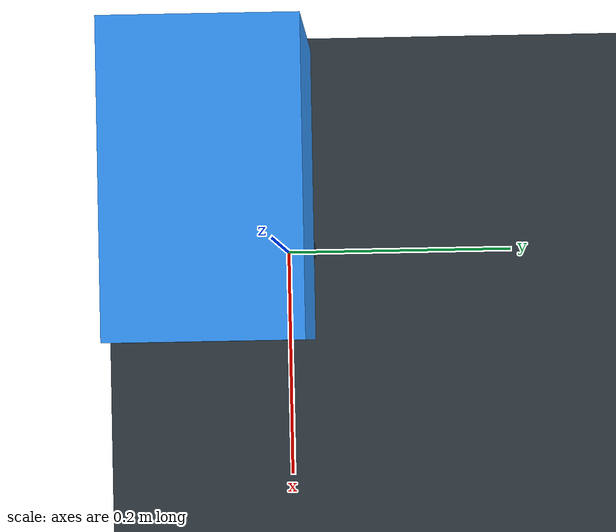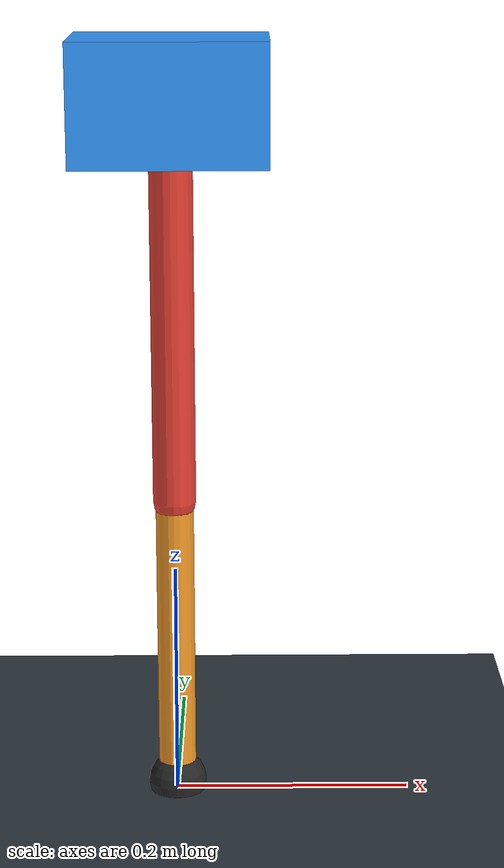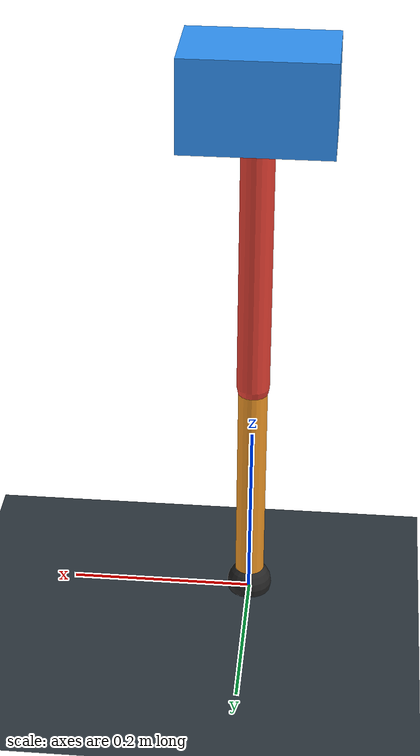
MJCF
<mujoco model="single_axis_two_bar">
  <compiler angle="radian" inertiafromgeom="true"/>
  <option timestep="0.001" integrator="implicitfast" gravity="0 0 -9.81"/>
  <default>
    <joint damping="0.08"/>
    <geom friction="1.2 0.01 0.0001" condim="3"/>
  </default>
  <worldbody>
    <geom name="floor" type="plane" size="5 5 0.1" rgba="0.18 0.22 0.25 1"/>
    <body name="carriage" pos="0 0 0.5964888664915265">
      <joint name="pole_slide" type="slide" axis="0 0 1"/>
      <geom name="payload" type="box" size="0.08 0.05 0.05" mass="2.6720753108809685" rgba="0.2 0.6 1 1"/>
      <body name="thigh" pos="0 0 0">
        <joint name="hip" type="hinge" axis="0 1 0"/>
        <geom name="thigh_link" type="capsule" fromto="0 0 0 0 0 -0.33584362052016403" size="0.018" mass="0.23929301740252382" rgba="0.9 0.25 0.2 1"/>
        <body name="shank" pos="0 0 -0.33584362052016403">
          <joint name="knee" type="hinge" axis="0 1 0"/>
          <geom name="shank_link" type="capsule" fromto="0 0 0 0 0 -0.2533201593680077" size="0.016" mass="0.18049396088028205" rgba="0.95 0.6 0.15 1"/>
          <geom name="foot" type="sphere" pos="0 0 -0.2533201593680077" size="0.025" mass="0.03" rgba="0.15 0.15 0.15 1"/>
          <site name="toe" pos="0 0 -0.2533201593680077" size="0.008"/>
        </body>
      </body>
    </body>
  </worldbody>
  <actuator>
    <motor name="hip_motor" joint="hip" ctrlrange="-28.773528784074095 28.773528784074095"/>
    <motor name="knee_motor" joint="knee" ctrlrange="-57.34743504589793 57.34743504589793"/>
  </actuator>
</mujoco>
